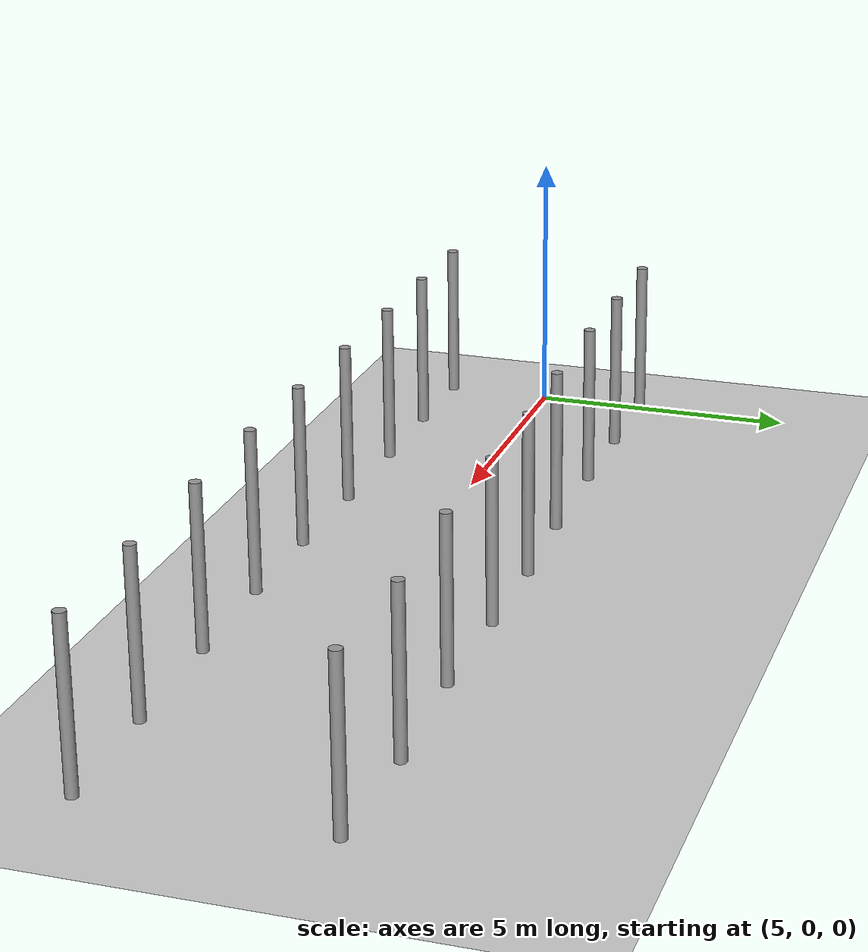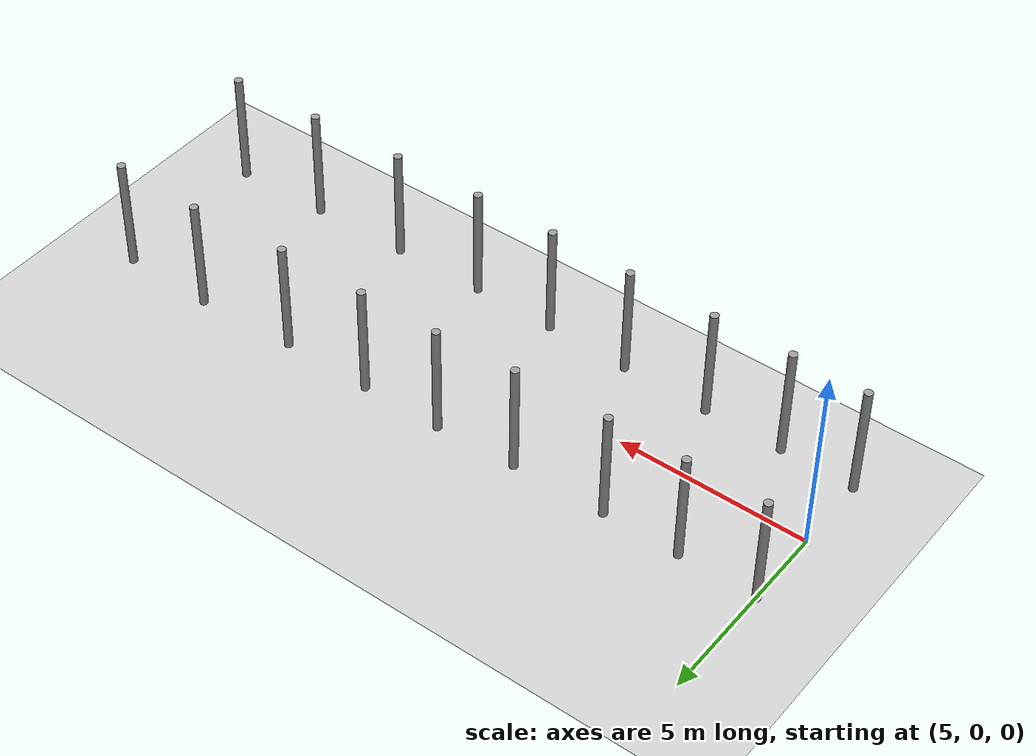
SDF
<sdf version="1.7">
 <world name="default">
  <light name="sun" type="directional">
   <pose>0 0 10 0 -0 0</pose>
   <diffuse>0.8 0.8 0.8 1</diffuse>
   <specular>0.2 0.2 0.2 1</specular>
   <attenuation>
    <range>1000</range>
    <constant>0.9</constant>
    <linear>0.01</linear>
    <quadratic>0.001</quadratic>
   </attenuation>
   <direction>-0.5 0.1 -0.9</direction>
   <spot><inner_angle>0</inner_angle><outer_angle>0</outer_angle><falloff>0</falloff></spot>
  </light>
  <model name="ground_plane">
   <static>1</static>
   <link name="link">
    <collision name="collision">
     <geometry><plane><normal>0 0 1</normal><size>100 100</size></plane></geometry>
     <surface>
      <contact><collide_bitmask>65535</collide_bitmask></contact>
      <friction><ode><mu>100</mu><mu2>50</mu2></ode></friction>
     </surface>
    </collision>
    <visual name="visual">
     <cast_shadows>0</cast_shadows>
     <geometry><plane><normal>0 0 1</normal><size>100 100</size></plane></geometry>
     <material>
      <script><uri>file://media/materials/scripts/gazebo.material</uri><name>Gazebo/Grey</name></script>
     </material>
    </visual>
   </link>
  </model>
  <gravity>0 0 -9.8</gravity>
  <magnetic_field>6e-06 2.3e-05 -4.2e-05</magnetic_field>
  <atmosphere type="adiabatic"/>
  <physics type="ode">
   <max_step_size>0.001</max_step_size>
   <real_time_factor>1</real_time_factor>
   <real_time_update_rate>1000</real_time_update_rate>
  </physics>
  <scene><ambient>0.4 0.4 0.4 1</ambient><background>0.7 0.7 0.7 1</background><shadows>1</shadows></scene>
  <spherical_coordinates>
   <surface_model>EARTH_WGS84</surface_model>
   <latitude_deg>0</latitude_deg>
   <longitude_deg>0</longitude_deg>
   <elevation>0</elevation>
   <heading_deg>0</heading_deg>
  </spherical_coordinates>
  <model name="unit_cylinder">
   <pose>5.0228 -2.00441 1.51621 0 0 -0.007944</pose>
   <link name="link">
    <inertial>
     <mass>1</mass>
     <inertia><ixx>0.145833</ixx><ixy>0</ixy><ixz>0</ixz><iyy>0.145833</iyy><iyz>0</iyz><izz>0.125</izz></inertia>
    </inertial>
    <collision name="collision">
     <geometry><cylinder><radius>0.107807</radius><length>3.03244</length></cylinder></geometry>
    </collision>
    <visual name="visual">
     <geometry><cylinder><radius>0.107807</radius><length>3.03244</length></cylinder></geometry>
     <material>
      <script><name>Gazebo/Grey</name><uri>file://media/materials/scripts/gazebo.material</uri></script>
     </material>
    </visual>
   </link>
  </model>
  <model name="unit_cylinder_clone">
   <pose>6.94533 -2.02485 1.51621 0 0 -0.007899</pose>
   <link name="link">
    <inertial>
     <mass>1</mass>
     <inertia><ixx>0.145833</ixx><ixy>0</ixy><ixz>0</ixz><iyy>0.145833</iyy><iyz>0</iyz><izz>0.125</izz></inertia>
    </inertial>
    <collision name="collision">
     <geometry><cylinder><radius>0.107807</radius><length>3.03244</length></cylinder></geometry>
    </collision>
    <visual name="visual">
     <geometry><cylinder><radius>0.107807</radius><length>3.03244</length></cylinder></geometry>
     <material>
      <script><name>Gazebo/Grey</name><uri>file://media/materials/scripts/gazebo.material</uri></script>
     </material>
    </visual>
   </link>
  </model>
  <model name="unit_cylinder_clone_0">
   <pose>9.00192 -2.01946 1.51621 0 0 -0.008036</pose>
   <link name="link">
    <inertial>
     <mass>1</mass>
     <inertia><ixx>0.145833</ixx><ixy>0</ixy><ixz>0</ixz><iyy>0.145833</iyy><iyz>0</iyz><izz>0.125</izz></inertia>
    </inertial>
    <collision name="collision">
     <geometry><cylinder><radius>0.107807</radius><length>3.03244</length></cylinder></geometry>
    </collision>
    <visual name="visual">
     <geometry><cylinder><radius>0.107807</radius><length>3.03244</length></cylinder></geometry>
     <material>
      <script><name>Gazebo/Grey</name><uri>file://media/materials/scripts/gazebo.material</uri></script>
     </material>
    </visual>
   </link>
  </model>
  <model name="unit_cylinder_clone_1">
   <pose>9.00996 2.03868 1.51621 0 0 -0.007854</pose>
   <link name="link">
    <inertial>
     <mass>1</mass>
     <inertia><ixx>0.145833</ixx><ixy>0</ixy><ixz>0</ixz><iyy>0.145833</iyy><iyz>0</iyz><izz>0.125</izz></inertia>
    </inertial>
    <collision name="collision">
     <geometry><cylinder><radius>0.107807</radius><length>3.03244</length></cylinder></geometry>
    </collision>
    <visual name="visual">
     <geometry><cylinder><radius>0.107807</radius><length>3.03244</length></cylinder></geometry>
     <material>
      <script><name>Gazebo/Grey</name><uri>file://media/materials/scripts/gazebo.material</uri></script>
     </material>
    </visual>
   </link>
  </model>
  <model name="unit_cylinder_clone_2">
   <pose>7.00819 2.03381 1.51622 0 0 -0.007681</pose>
   <link name="link">
    <inertial>
     <mass>1</mass>
     <inertia><ixx>0.145833</ixx><ixy>0</ixy><ixz>0</ixz><iyy>0.145833</iyy><iyz>0</iyz><izz>0.125</izz></inertia>
    </inertial>
    <collision name="collision">
     <geometry><cylinder><radius>0.107807</radius><length>3.03244</length></cylinder></geometry>
    </collision>
    <visual name="visual">
     <geometry><cylinder><radius>0.107807</radius><length>3.03244</length></cylinder></geometry>
     <material>
      <script><name>Gazebo/Grey</name><uri>file://media/materials/scripts/gazebo.material</uri></script>
     </material>
    </visual>
   </link>
  </model>
  <model name="unit_cylinder_clone_3">
   <pose>4.9881 2.02875 1.51622 0 0 -0.00736</pose>
   <link name="link">
    <inertial>
     <mass>1</mass>
     <inertia><ixx>0.145833</ixx><ixy>0</ixy><ixz>0</ixz><iyy>0.145833</iyy><iyz>0</iyz><izz>0.125</izz></inertia>
    </inertial>
    <collision name="collision">
     <geometry><cylinder><radius>0.107807</radius><length>3.03244</length></cylinder></geometry>
    </collision>
    <visual name="visual">
     <geometry><cylinder><radius>0.107807</radius><length>3.03244</length></cylinder></geometry>
     <material>
      <script><name>Gazebo/Grey</name><uri>file://media/materials/scripts/gazebo.material</uri></script>
     </material>
    </visual>
   </link>
  </model>
  <model name="unit_cylinder_clone_4">
   <pose>11.2969 -2.032 1.51622 0 0 -0.007332</pose>
   <link name="link">
    <inertial>
     <mass>1</mass>
     <inertia><ixx>0.145833</ixx><ixy>0</ixy><ixz>0</ixz><iyy>0.145833</iyy><iyz>0</iyz><izz>0.125</izz></inertia>
    </inertial>
    <collision name="collision">
     <geometry><cylinder><radius>0.107807</radius><length>3.03244</length></cylinder></geometry>
    </collision>
    <visual name="visual">
     <geometry><cylinder><radius>0.107807</radius><length>3.03244</length></cylinder></geometry>
     <material>
      <script><name>Gazebo/Grey</name><uri>file://media/materials/scripts/gazebo.material</uri></script>
     </material>
    </visual>
   </link>
  </model>
  <model name="unit_cylinder_clone_5">
   <pose>11.4516 2.09959 1.51621 0 0 -0.00717</pose>
   <link name="link">
    <inertial>
     <mass>1</mass>
     <inertia><ixx>0.145833</ixx><ixy>0</ixy><ixz>0</ixz><iyy>0.145833</iyy><iyz>0</iyz><izz>0.125</izz></inertia>
    </inertial>
    <collision name="collision">
     <geometry><cylinder><radius>0.107807</radius><length>3.03244</length></cylinder></geometry>
    </collision>
    <visual name="visual">
     <geometry><cylinder><radius>0.107807</radius><length>3.03244</length></cylinder></geometry>
     <material>
      <script><name>Gazebo/Grey</name><uri>file://media/materials/scripts/gazebo.material</uri></script>
     </material>
    </visual>
   </link>
  </model>
  <model name="unit_cylinder_clone_6">
   <pose>13.5185 -2.07922 1.51621 0 0 -0.007397</pose>
   <link name="link">
    <inertial>
     <mass>1</mass>
     <inertia><ixx>0.145833</ixx><ixy>0</ixy><ixz>0</ixz><iyy>0.145833</iyy><iyz>0</iyz><izz>0.125</izz></inertia>
    </inertial>
    <collision name="collision">
     <geometry><cylinder><radius>0.107807</radius><length>3.03244</length></cylinder></geometry>
    </collision>
    <visual name="visual">
     <geometry><cylinder><radius>0.107807</radius><length>3.03244</length></cylinder></geometry>
     <material>
      <script><name>Gazebo/Grey</name><uri>file://media/materials/scripts/gazebo.material</uri></script>
     </material>
    </visual>
   </link>
  </model>
  <model name="unit_cylinder_clone_7">
   <pose>13.5715 2.19908 1.51621 0 0 -0.007008</pose>
   <link name="link">
    <inertial>
     <mass>1</mass>
     <inertia><ixx>0.145833</ixx><ixy>0</ixy><ixz>0</ixz><iyy>0.145833</iyy><iyz>0</iyz><izz>0.125</izz></inertia>
    </inertial>
    <collision name="collision">
     <geometry><cylinder><radius>0.107807</radius><length>3.03244</length></cylinder></geometry>
    </collision>
    <visual name="visual">
     <geometry><cylinder><radius>0.107807</radius><length>3.03244</length></cylinder></geometry>
     <material>
      <script><name>Gazebo/Grey</name><uri>file://media/materials/scripts/gazebo.material</uri></script>
     </material>
    </visual>
   </link>
  </model>
  <model name="unit_cylinder_clone_8">
   <pose>15.7105 -2.09129 1.51622 0 1e-06 -0.006627</pose>
   <link name="link">
    <inertial>
     <mass>1</mass>
     <inertia><ixx>0.145833</ixx><ixy>0</ixy><ixz>0</ixz><iyy>0.145833</iyy><iyz>0</iyz><izz>0.125</izz></inertia>
    </inertial>
    <collision name="collision">
     <geometry><cylinder><radius>0.107807</radius><length>3.03244</length></cylinder></geometry>
    </collision>
    <visual name="visual">
     <geometry><cylinder><radius>0.107807</radius><length>3.03244</length></cylinder></geometry>
     <material>
      <script><name>Gazebo/Grey</name><uri>file://media/materials/scripts/gazebo.material</uri></script>
     </material>
    </visual>
   </link>
  </model>
  <model name="unit_cylinder_clone_9">
   <pose>15.7095 2.21222 1.51621 0 0 -0.00682</pose>
   <link name="link">
    <inertial>
     <mass>1</mass>
     <inertia><ixx>0.145833</ixx><ixy>0</ixy><ixz>0</ixz><iyy>0.145833</iyy><iyz>0</iyz><izz>0.125</izz></inertia>
    </inertial>
    <collision name="collision">
     <geometry><cylinder><radius>0.107807</radius><length>3.03244</length></cylinder></geometry>
    </collision>
    <visual name="visual">
     <geometry><cylinder><radius>0.107807</radius><length>3.03244</length></cylinder></geometry>
     <material>
      <script><name>Gazebo/Grey</name><uri>file://media/materials/scripts/gazebo.material</uri></script>
     </material>
    </visual>
   </link>
  </model>
  <model name="unit_cylinder_clone_10">
   <pose>18.1115 -2.04655 1.51622 0 0 -0.006502</pose>
   <link name="link">
    <inertial>
     <mass>1</mass>
     <inertia><ixx>0.145833</ixx><ixy>0</ixy><ixz>0</ixz><iyy>0.145833</iyy><iyz>0</iyz><izz>0.125</izz></inertia>
    </inertial>
    <collision name="collision">
     <geometry><cylinder><radius>0.107807</radius><length>3.03244</length></cylinder></geometry>
    </collision>
    <visual name="visual">
     <geometry><cylinder><radius>0.107807</radius><length>3.03244</length></cylinder></geometry>
     <material>
      <script><name>Gazebo/Grey</name><uri>file://media/materials/scripts/gazebo.material</uri></script>
     </material>
    </visual>
   </link>
  </model>
  <model name="unit_cylinder_clone_11">
   <pose>18.0853 2.20335 1.51621 0 0 -0.006574</pose>
   <link name="link">
    <inertial>
     <mass>1</mass>
     <inertia><ixx>0.145833</ixx><ixy>0</ixy><ixz>0</ixz><iyy>0.145833</iyy><iyz>0</iyz><izz>0.125</izz></inertia>
    </inertial>
    <collision name="collision">
     <geometry><cylinder><radius>0.107807</radius><length>3.03244</length></cylinder></geometry>
    </collision>
    <visual name="visual">
     <geometry><cylinder><radius>0.107807</radius><length>3.03244</length></cylinder></geometry>
     <material>
      <script><name>Gazebo/Grey</name><uri>file://media/materials/scripts/gazebo.material</uri></script>
     </material>
    </visual>
   </link>
  </model>
  <model name="unit_cylinder_clone_12">
   <pose>20.6716 -1.99888 1.51621 -0 -0 -0.006107</pose>
   <link name="link">
    <inertial>
     <mass>1</mass>
     <inertia><ixx>0.145833</ixx><ixy>0</ixy><ixz>0</ixz><iyy>0.145833</iyy><iyz>0</iyz><izz>0.125</izz></inertia>
    </inertial>
    <collision name="collision">
     <geometry><cylinder><radius>0.107807</radius><length>3.03244</length></cylinder></geometry>
    </collision>
    <visual name="visual">
     <geometry><cylinder><radius>0.107807</radius><length>3.03244</length></cylinder></geometry>
     <material>
      <script><name>Gazebo/Grey</name><uri>file://media/materials/scripts/gazebo.material</uri></script>
     </material>
    </visual>
   </link>
  </model>
  <model name="unit_cylinder_clone_13">
   <pose>20.6964 2.33083 1.51621 0 0 -0.005907</pose>
   <link name="link">
    <inertial>
     <mass>1</mass>
     <inertia><ixx>0.145833</ixx><ixy>0</ixy><ixz>0</ixz><iyy>0.145833</iyy><iyz>0</iyz><izz>0.125</izz></inertia>
    </inertial>
    <collision name="collision">
     <geometry><cylinder><radius>0.107807</radius><length>3.03244</length></cylinder></geometry>
    </collision>
    <visual name="visual">
     <geometry><cylinder><radius>0.107807</radius><length>3.03244</length></cylinder></geometry>
     <material>
      <script><name>Gazebo/Grey</name><uri>file://media/materials/scripts/gazebo.material</uri></script>
     </material>
    </visual>
   </link>
  </model>
  <model name="unit_cylinder_clone_14">
   <pose>23.1376 -1.94765 1.51622 -0 -0 -0.00564</pose>
   <link name="link">
    <inertial>
     <mass>1</mass>
     <inertia><ixx>0.145833</ixx><ixy>0</ixy><ixz>0</ixz><iyy>0.145833</iyy><iyz>0</iyz><izz>0.125</izz></inertia>
    </inertial>
    <collision name="collision">
     <geometry><cylinder><radius>0.107807</radius><length>3.03244</length></cylinder></geometry>
    </collision>
    <visual name="visual">
     <geometry><cylinder><radius>0.107807</radius><length>3.03244</length></cylinder></geometry>
     <material>
      <script><name>Gazebo/Grey</name><uri>file://media/materials/scripts/gazebo.material</uri></script>
     </material>
    </visual>
   </link>
  </model>
  <model name="unit_cylinder_clone_15">
   <pose>23.1078 2.26951 1.51621 -0 1e-06 -0.005495</pose>
   <link name="link">
    <inertial>
     <mass>1</mass>
     <inertia><ixx>0.145833</ixx><ixy>0</ixy><ixz>0</ixz><iyy>0.145833</iyy><iyz>0</iyz><izz>0.125</izz></inertia>
    </inertial>
    <collision name="collision">
     <geometry><cylinder><radius>0.107807</radius><length>3.03244</length></cylinder></geometry>
    </collision>
    <visual name="visual">
     <geometry><cylinder><radius>0.107807</radius><length>3.03244</length></cylinder></geometry>
     <material>
      <script><name>Gazebo/Grey</name><uri>file://media/materials/scripts/gazebo.material</uri></script>
     </material>
    </visual>
   </link>
  </model>
 </world>
</sdf>
